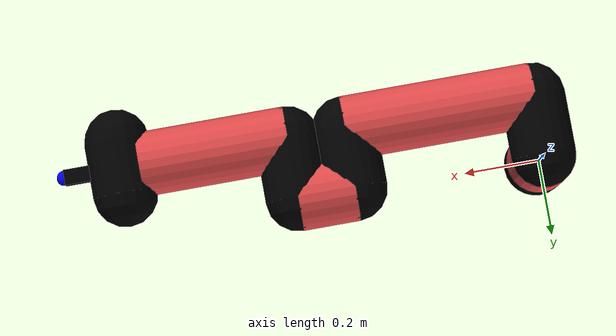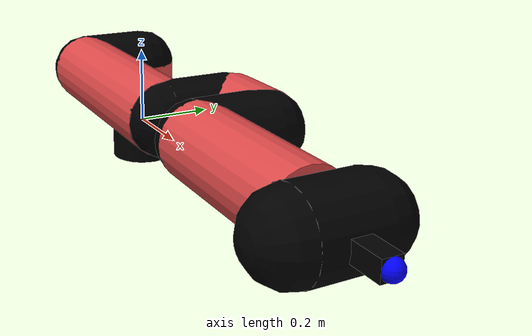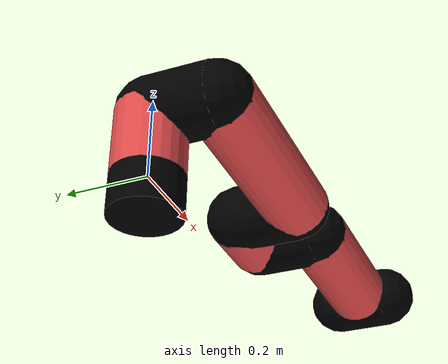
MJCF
<mujoco model="manipulator">
		<compiler angle="degree" coordinate="local" inertiafromgeom="auto" meshdir="meshes/"/>
		<option gravity="0 0 0" integrator="RK4" iterations="30" timestep="0.01"/>

		<default>
		<joint armature="1" limited="true" stiffness="10" damping="15" frictionloss="5.0"/>
		<geom conaffinity="1" condim="3" contype="1" friction=".5 .1 .1" margin="0.002"/>
		<motor ctrllimited="true"/>
		<position ctrllimited="true"/>
		</default>

		<asset>
		<texture builtin="gradient" height="100" rgb1="1.0 1.0 1.0" rgb2="1.0 1.0 1.0" type="skybox" width="100"/>
		<texture builtin="flat" height="32" name="arm_tex" rgb1="0.9 0.3 0.3" type="2d" width="32"/>
		<texture builtin="flat" height="32" name="gripper_tex" rgb1="0.0 0.0 0.0" type="cube" width="32"/>

		<material name="arm_mat" shininess="0.1" specular="0.1" texture="arm_tex"/>
		<material name="gripper_mat" shininess="1" specular="1" texture="gripper_tex"/>
		</asset>

		<worldbody>
		<light cutoff="45" diffuse=".8 .8 .8" dir="0 0.16 -1" directional="false" name="light" pos="0 -2.0 8.0" specular="0.3 0.3 0.3"/>

		<body name="base_link" pos="0 0 -0.1">
		<geom fromto="0 0 0 0 0 0.1" material="arm_mat" name="base_link" rgba="0.0 0.0 0.0 1" size="0.085" type="cylinder"/>
		</body>

		<body name="l1" pos="0 0 0">
<geom fromto="0 0 0 0 0 0.17" material="arm_mat" name="l1" rgba="0.9 0.3 0.3 1" size="0.085" type="cylinder"/>
<geom fromto="0 0 0.17 0 -0.16 0.17" material="arm_mat" name="l1_ex" rgba="0.0 0.0 0.0 1" size="0.085" type="capsule"/>
<joint axis="0 0 1" name="j1" pos="0 0 0" range="-90 90" damping="42.51" frictionloss="13.17"/>

<body name="l2" pos="0 -0.16 0.17">
<geom fromto="0 0 0 0.5 0 0" material="arm_mat" name="l2" rgba="0.9 0.3 0.3 1" size="0.085" type="cylinder"/>
<geom fromto="0.5 0 0 0.5 0.16 0" material="arm_mat" name="l2_ex" rgba="0.0 0.0 0.0 1" size="0.085" type="capsule"/>
<joint axis="0.0 1.0 0.0" name="j2" pos="0 0 0" range="-90 60" damping="28.18" frictionloss="11.82"/>

<body name="l3" pos="0.5 0.16 0">
<geom fromto="0 0 0 0.15 0 0" material="arm_mat" name="l3" rgba="0.9 0.3 0.3 1" size="0.085" type="cylinder"/>
<geom fromto="0.15 0 0 0.15 -0.16 0" material="arm_mat" name="l3_ex" rgba="0.0 0.0 0.0 1" size="0.085" type="capsule"/>
<joint axis="0.0 1.0 0.0" name="j3" pos="0 0 0" range="-30 60" damping="13.02" frictionloss="14.03"/>

<body name="l4" pos="0.15 -0.16 0">
<geom fromto="0 0 0 0.39 0 0" material="arm_mat" name="l4" rgba="0.9 0.3 0.3 1" size="0.085" type="cylinder"/>
<joint axis="0.0 1.0 0.0" name="j4" pos="0 0 0" range="-30 60" damping="12.08" frictionloss="9.34"/>

<body name="gripper" pos="0.39 0 0">
<geom fromto="0.05 -0.07 0 0.05 0.07 0" material="gripper_mat" name="gripper" rgba="0.0 0.0 0.0 1" size="0.085" type="capsule"/><joint axis="1 0 0" name="j5" pos="0 0 0" range="-90 90" damping="15" frictionloss="5.0"/><body name="finger" pos="0.1 0 0">
<geom fromto="0 0.0 0 0.1 0.0 0" material="gripper_mat" name="finger" rgba="0.0 0.0 0.0 1" size="0.020 0.06 0.06" type="box"/>
</body>
<site name="current" pos="0.2 0. 0.0" rgba="0. 0. 1.0 1" size="0.02" type="sphere"/>
</body>
</body>
</body>
</body>
</body>
</worldbody>
<actuator>
<motor ctrllimited="true" ctrlrange="-1.0 1.0" joint="j1" gear="56.49"/>
<motor ctrllimited="true" ctrlrange="-1.0 1.0" joint="j2" gear="107.72"/>
<motor ctrllimited="true" ctrlrange="-1.0 1.0" joint="j3" gear="73.55"/>
<motor ctrllimited="true" ctrlrange="-1.0 1.0" joint="j4" gear="101.27"/>
<motor ctrllimited="true" ctrlrange="-1.0 1.0" joint="j5" gear="80"/>
</actuator>
</mujoco>
